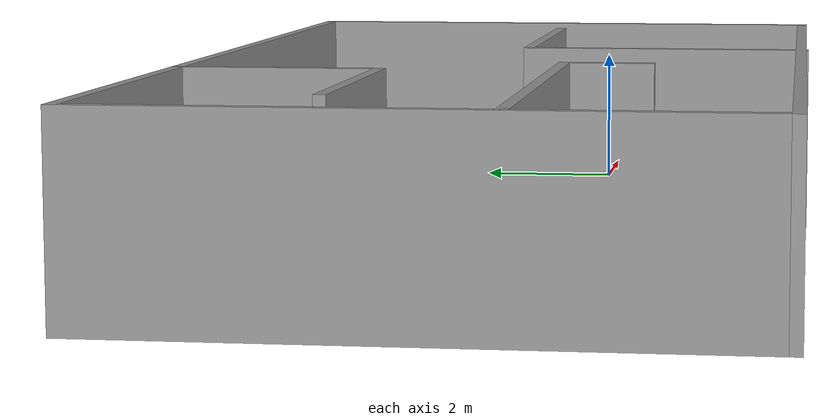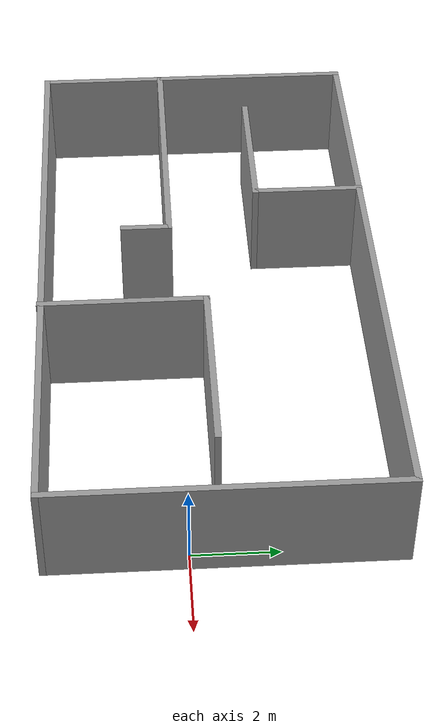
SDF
<?xml version='1.0'?>
<sdf version='1.7'>
  <model name='room'>
    <pose>-7.1398 0.774635 0 0 -0 0</pose>
    <link name='Wall_11'>
      <collision name='Wall_11_Collision'>
        <geometry>
          <box>
            <size>6.5 0.15 2.5</size>
          </box>
        </geometry>
        <pose>0 0 1.25 0 -0 0</pose>
      </collision>
      <visual name='Wall_11_Visual'>
        <pose>0 0 1.25 0 -0 0</pose>
        <geometry>
          <box>
            <size>6.5 0.15 2.5</size>
          </box>
        </geometry>
        <material>
          <script>
            <uri>file://media/materials/scripts/gazebo.material</uri>
            <name>Gazebo/Grey</name>
          </script>
          <ambient>1 1 1 1</ambient>
        </material>
        <meta>
          <layer>0</layer>
        </meta>
      </visual>
      <pose>-4.22983 -0.864883 0 0 -0 0</pose>
    </link>
    <link name='Wall_12'>
      <collision name='Wall_12_Collision'>
        <geometry>
          <box>
            <size>1.25 0.15 2.5</size>
          </box>
        </geometry>
        <pose>0 0 1.25 0 -0 0</pose>
      </collision>
      <visual name='Wall_12_Visual'>
        <pose>0 0 1.25 0 -0 0</pose>
        <geometry>
          <box>
            <size>1.25 0.15 2.5</size>
          </box>
        </geometry>
        <material>
          <script>
            <uri>file://media/materials/scripts/gazebo.material</uri>
            <name>Gazebo/Grey</name>
          </script>
          <ambient>1 1 1 1</ambient>
        </material>
        <meta>
          <layer>0</layer>
        </meta>
      </visual>
      <pose>-1.05483 -1.41488 0 0 -0 -1.5708</pose>
    </link>
    <link name='Wall_14'>
      <collision name='Wall_14_Collision'>
        <geometry>
          <box>
            <size>4 0.15 2.5</size>
          </box>
        </geometry>
        <pose>0 0 1.25 0 -0 0</pose>
      </collision>
      <visual name='Wall_14_Visual'>
        <pose>0 0 1.25 0 -0 0</pose>
        <geometry>
          <box>
            <size>4 0.15 2.5</size>
          </box>
        </geometry>
        <material>
          <script>
            <uri>file://media/materials/scripts/gazebo.material</uri>
            <name>Gazebo/Grey</name>
          </script>
          <ambient>1 1 1 1</ambient>
        </material>
        <meta>
          <layer>0</layer>
        </meta>
      </visual>
      <pose>1.60605 -2.01726 0 0 -0 1.5708</pose>
    </link>
    <link name='Wall_15'>
      <collision name='Wall_15_Collision'>
        <geometry>
          <box>
            <size>4.5 0.15 2.5</size>
          </box>
        </geometry>
        <pose>0 0 1.25 0 -0 0</pose>
      </collision>
      <visual name='Wall_15_Visual'>
        <pose>0 0 1.25 0 -0 0</pose>
        <geometry>
          <box>
            <size>4.5 0.15 2.5</size>
          </box>
        </geometry>
        <material>
          <script>
            <uri>file://media/materials/scripts/gazebo.material</uri>
            <name>Gazebo/Grey</name>
          </script>
          <ambient>1 1 1 1</ambient>
        </material>
        <meta>
          <layer>0</layer>
        </meta>
      </visual>
      <pose>3.78105 -0.09226 0 0 -0 0</pose>
    </link>
    <link name='Wall_3'>
      <collision name='Wall_3_Collision'>
        <geometry>
          <box>
            <size>15 0.15 2.5</size>
          </box>
        </geometry>
        <pose>0 0 1.25 0 -0 0</pose>
      </collision>
      <visual name='Wall_3_Visual'>
        <pose>0 0 1.25 0 -0 0</pose>
        <geometry>
          <box>
            <size>15 0.15 2.5</size>
          </box>
        </geometry>
        <material>
          <script>
            <uri>file://media/materials/scripts/gazebo.material</uri>
            <name>Gazebo/Grey</name>
          </script>
          <ambient>1 1 1 1</ambient>
        </material>
        <meta>
          <layer>0</layer>
        </meta>
      </visual>
      <pose>0 3.93609 0 0 -0 0</pose>
    </link>
    <link name='Wall_4'>
      <collision name='Wall_4_Collision'>
        <geometry>
          <box>
            <size>8 0.15 2.5</size>
          </box>
        </geometry>
        <pose>0 0 1.25 0 -0 0</pose>
      </collision>
      <visual name='Wall_4_Visual'>
        <pose>0 0 1.25 0 -0 0</pose>
        <geometry>
          <box>
            <size>8 0.15 2.5</size>
          </box>
        </geometry>
        <material>
          <script>
            <uri>file://media/materials/scripts/gazebo.material</uri>
            <name>Gazebo/Grey</name>
          </script>
          <ambient>1 1 1 1</ambient>
        </material>
        <meta>
          <layer>0</layer>
        </meta>
      </visual>
      <pose>7.425 0.011093 0 0 -0 -1.5708</pose>
    </link>
    <link name='Wall_5'>
      <collision name='Wall_5_Collision'>
        <geometry>
          <box>
            <size>15 0.15 2.5</size>
          </box>
        </geometry>
        <pose>0 0 1.25 0 -0 0</pose>
      </collision>
      <visual name='Wall_5_Visual'>
        <pose>0 0 1.25 0 -0 0</pose>
        <geometry>
          <box>
            <size>15 0.15 2.5</size>
          </box>
        </geometry>
        <material>
          <script>
            <uri>file://media/materials/scripts/gazebo.material</uri>
            <name>Gazebo/Grey</name>
          </script>
          <ambient>1 1 1 1</ambient>
        </material>
        <meta>
          <layer>0</layer>
        </meta>
      </visual>
      <pose>0 -3.91391 0 0 -0 3.14159</pose>
    </link>
    <link name='Wall_6'>
      <collision name='Wall_6_Collision'>
        <geometry>
          <box>
            <size>8 0.15 2.5</size>
          </box>
        </geometry>
        <pose>0 0 1.25 0 -0 0</pose>
      </collision>
      <visual name='Wall_6_Visual'>
        <pose>0 0 1.25 0 -0 0</pose>
        <geometry>
          <box>
            <size>8 0.15 2.5</size>
          </box>
        </geometry>
        <material>
          <script>
            <uri>file://media/materials/scripts/gazebo.material</uri>
            <name>Gazebo/Grey</name>
          </script>
          <ambient>1 1 1 1</ambient>
        </material>
        <meta>
          <layer>0</layer>
        </meta>
      </visual>
      <pose>-7.425 0.011093 0 0 -0 1.5708</pose>
    </link>
    <link name='Wall_8'>
      <collision name='Wall_8_Collision'>
        <geometry>
          <box>
            <size>2.75 0.15 2.5</size>
          </box>
        </geometry>
        <pose>0 0 1.25 0 -0 0</pose>
      </collision>
      <visual name='Wall_8_Visual'>
        <pose>0 0 1.25 0 -0 0</pose>
        <geometry>
          <box>
            <size>2.75 0.15 2.5</size>
          </box>
        </geometry>
        <material>
          <script>
            <uri>file://media/materials/scripts/gazebo.material</uri>
            <name>Gazebo/Grey</name>
          </script>
          <ambient>1 1 1 1</ambient>
        </material>
        <meta>
          <layer>0</layer>
        </meta>
      </visual>
      <pose>-2.33621 2.64226 0 0 -0 -1.5708</pose>
    </link>
    <link name='Wall_9'>
      <collision name='Wall_9_Collision'>
        <geometry>
          <box>
            <size>3.75 0.15 2.5</size>
          </box>
        </geometry>
        <pose>0 0 1.25 0 -0 0</pose>
      </collision>
      <visual name='Wall_9_Visual'>
        <pose>0 0 1.25 0 -0 0</pose>
        <geometry>
          <box>
            <size>3.75 0.15 2.5</size>
          </box>
        </geometry>
        <material>
          <script>
            <uri>file://media/materials/scripts/gazebo.material</uri>
            <name>Gazebo/Grey</name>
          </script>
          <ambient>1 1 1 1</ambient>
        </material>
        <meta>
          <layer>0</layer>
        </meta>
      </visual>
      <pose>-4.13621 1.34226 0 0 -0 3.14159</pose>
    </link>
    <static>1</static>
  </model>
</sdf>
